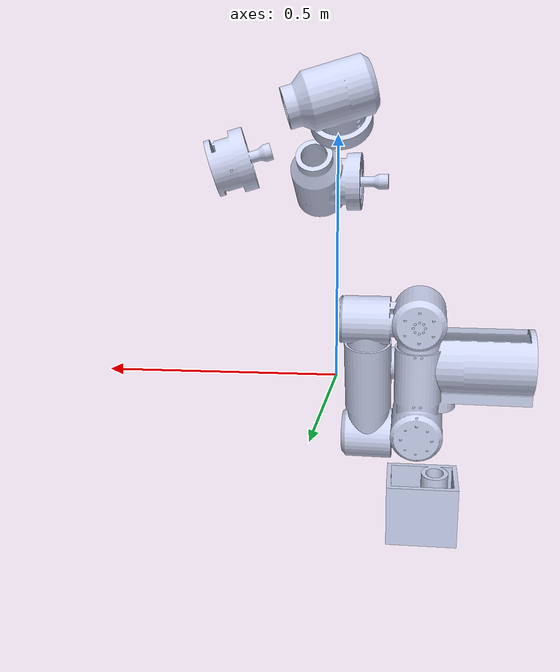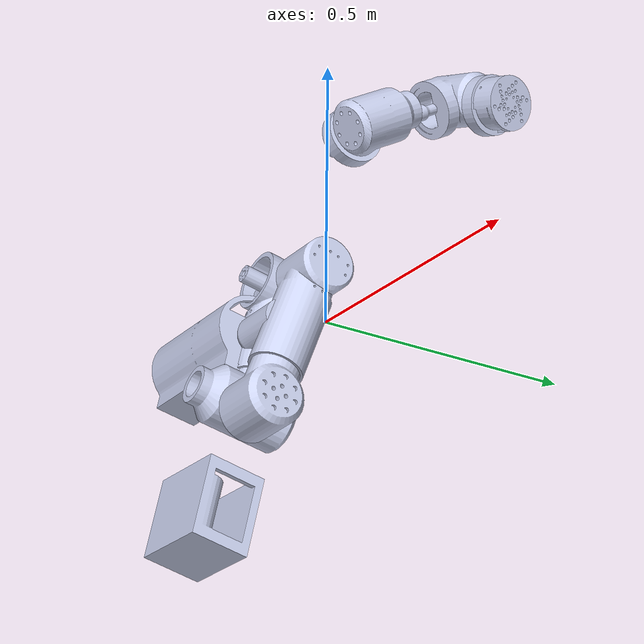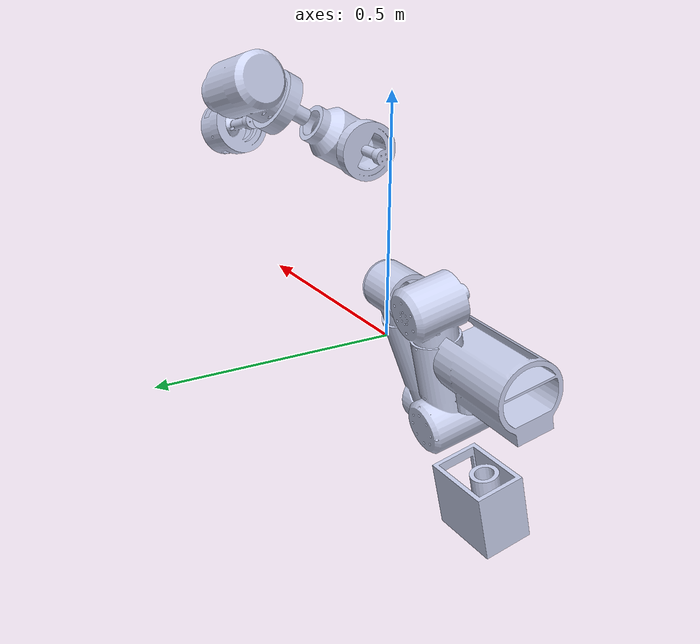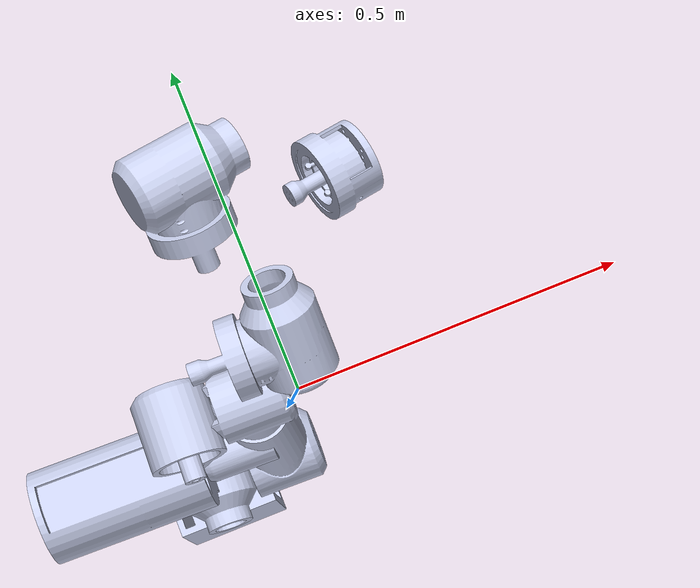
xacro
<?xml version="1.0"?>
<robot xmlns:xacro="http://www.ros.org/wiki/xacro" name="handy">
    <xacro:arg name="initial_positions_file" default="initial_positions.yaml" />
    <xacro:arg name="ros2_control_hardware_type" default="mock_components" />

    <!-- Import handy urdf file -->
    <xacro:include filename="$(find handy_description)/urdf/handy_arm.urdf" />

    <!-- Import control_xacro -->
    <xacro:include filename="handy.ros2_control.xacro" />

    <!-- Import Gazebo materials (optional, for better visuals) -->
    <xacro:include filename="gazebo_materials.xacro" />

    <xacro:handy_ros2_control
        name="FakeSystem"
        initial_positions_file="$(arg initial_positions_file)"
        hardware_type="$(arg ros2_control_hardware_type)"
    />

    <!-- Gazebo ros2_control plugin -->
    <gazebo>
        <plugin filename="gz_ros2_control-system" name="gz_ros2_control::GazeboSimROS2ControlPlugin">
            <parameters>$(find arm_config)/config/ros2_controllers.yaml</parameters>
        </plugin>
    </gazebo>

</robot>

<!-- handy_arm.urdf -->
<robot name="handy">
  <link name="world"/>
  <joint name="world_to_base_link" type="fixed">
    <parent link="world"/>
    <child link="base_link"/>
  </joint>
  <link name="base_link">
    <inertial>
      <origin xyz="-0.201494797464755 -0.33270613657075 0.122153346997545" rpy="0 0 0" />
      <mass value="1.02993183799962" />
      <inertia ixx="0.00388180151314568" ixy="0.000146477227467121" ixz="-3.08858068252909E-05" iyy="0.00391121441782537" iyz="0.000182968195139445" izz="0.00469941089703615" />
    </inertial>
    <visual>
      <origin xyz="0 0 0" rpy="0 0 0" />
      <geometry>
        <mesh filename="file://$(find handy_description)/meshes/base_link.STL" />
      </geometry>
      <material name="">
        <color rgba="0.792156862745098 0.819607843137255 0.933333333333333 1" />
      </material>
    </visual>
    <collision>
      <origin xyz="0 0 0" rpy="0 0 0" />
      <geometry>
        <mesh filename="file://$(find handy_description)/meshes/base_link.STL" />
      </geometry>
    </collision>
  </link>
  <link name="link1">
    <inertial>
      <origin xyz="-0.0666786874373314 -0.0921973017688339 0.000264678789029818" rpy="0 0 0" />
      <mass value="1.64132539317416" />
      <inertia ixx="0.00556535118301659" ixy="7.50079938158334E-05" ixz="2.24280949133407E-06" iyy="0.0114726745142463" iyz="-3.69085556569161E-05" izz="0.0119142260742093" />
    </inertial>
    <visual>
      <origin xyz="0 0 0" rpy="0 0 0" />
      <geometry>
        <mesh filename="file://$(find handy_description)/meshes/link1.STL" />
      </geometry>
      <material name="">
        <color rgba="0.792156862745098 0.819607843137255 0.933333333333333 1" />
      </material>
    </visual>
    <collision>
      <origin xyz="0 0 0" rpy="0 0 0" />
      <geometry>
        <mesh filename="file://$(find handy_description)/meshes/link1.STL" />
      </geometry>
    </collision>
  </link>
  <joint name="joint1" type="continuous">
    <origin xyz="-0.216688742328293 -0.0653750258144941 -0.076488940569971" rpy="1.35139351605387 -0.005661808569178 -0.0253845459184578" />
    <parent link="base_link" />
    <child link="link1" />
    <axis xyz="0 1 0" />
  </joint>
  <link name="link2">
    <inertial>
      <origin xyz="0.0645803236808763 0.134667104220208 0.000383946319312364" rpy="0 0 0" />
      <mass value="1.21151502652652" />
      <inertia ixx="0.0193047378103137" ixy="4.29936090457579E-05" ixz="9.67797968209189E-07" iyy="0.00234396250666855" iyz="-3.24531752611424E-05" izz="0.01932250860384" />
    </inertial>
    <visual>
      <origin xyz="0 0 0" rpy="0 0 0" />
      <geometry>
        <mesh filename="file://$(find handy_description)/meshes/link2.STL" />
      </geometry>
      <material name="">
        <color rgba="0.792156862745098 0.819607843137255 0.933333333333333 1" />
      </material>
    </visual>
    <collision>
      <origin xyz="0 0 0" rpy="0 0 0" />
      <geometry>
        <mesh filename="file://$(find handy_description)/meshes/link2.STL" />
      </geometry>
    </collision>
  </link>
  <joint name="joint2" type="continuous">
    <origin xyz="0.0435803772319436 -0.0732024481510685 0" rpy="-0.145305947427022 0 0" />
    <parent link="link1" />
    <child link="link2" />
    <axis xyz="1 0 0" />
  </joint>
  <link name="link3">
    <inertial>
      <origin xyz="-3.87366894838426E-07 -0.13490249576615 -0.0632344196231825" rpy="0 0 0" />
      <mass value="1.49807122606035" />
      <inertia ixx="0.0251458807049096" ixy="-7.28940033545766E-09" ixz="1.25447986991812E-08" iyy="0.00365599160370087" iyz="0.000442302513898746" izz="0.0245472015680104" />
    </inertial>
    <visual>
      <origin xyz="0 0 0" rpy="0 0 0" />
      <geometry>
        <mesh filename="file://$(find handy_description)/meshes/link3.STL" />
      </geometry>
      <material name="">
        <color rgba="0.792156862745098 0.819607843137255 0.933333333333333 1" />
      </material>
    </visual>
    <collision>
      <origin xyz="0 0 0" rpy="0 0 0" />
      <geometry>
        <mesh filename="file://$(find handy_description)/meshes/link3.STL" />
      </geometry>
    </collision>
  </link>
  <joint name="joint3" type="continuous">
    <origin xyz="0 0.29155 0.000575582702540212" rpy="-1.5707963267949 -1.42559453038284 -1.5707963267949" />
    <parent link="link2" />
    <child link="link3" />
    <axis xyz="0 0 1" />
  </joint>
  <link name="link4">
    <inertial>
      <origin xyz="-8.16098910672025E-10 0.0948982331730346 -0.00464804995374629" rpy="0 0 0" />
      <mass value="0.77283222645942" />
      <inertia ixx="0.00331238472122077" ixy="-1.89118668225279E-09" ixz="-2.54703633791736E-09" iyy="0.0017818145052466" iyz="5.48858845251521E-05" izz="0.0028907330169525" />
    </inertial>
    <visual>
      <origin xyz="0 0 0" rpy="0 0 0" />
      <geometry>
        <mesh filename="file://$(find handy_description)/meshes/link4.STL" />
      </geometry>
      <material name="">
        <color rgba="0.792156862745098 0.819607843137255 0.933333333333333 1" />
      </material>
    </visual>
    <collision>
      <origin xyz="0 0 0" rpy="0 0 0" />
      <geometry>
        <mesh filename="file://$(find handy_description)/meshes/link4.STL" />
      </geometry>
    </collision>
  </link>
  <joint name="joint4" type="continuous">
    <origin xyz="0 -0.283 0.00601150526788313" rpy="1.5707963267949 0 2.3178872736497" />
    <parent link="link3" />
    <child link="link4" />
    <axis xyz="0 1 0" />
  </joint>
  <link name="link5">
    <inertial>
      <origin xyz="5.92350640205019E-08 0.0315882824222283 -0.0047896223724456" rpy="0 0 0" />
      <mass value="0.653920203225296" />
      <inertia ixx="0.00226060399731019" ixy="-2.74742085885123E-09" ixz="-1.15453855275351E-09" iyy="0.00160541270553799" iyz="2.85164716006729E-05" izz="0.00183368099339665" />
    </inertial>
    <visual>
      <origin xyz="0 0 0" rpy="0 0 0" />
      <geometry>
        <mesh filename="file://$(find handy_description)/meshes/link5.STL" />
      </geometry>
      <material name="">
        <color rgba="0.792156862745098 0.819607843137255 0.933333333333333 1" />
      </material>
    </visual>
    <collision>
      <origin xyz="0 0 0" rpy="0 0 0" />
      <geometry>
        <mesh filename="file://$(find handy_description)/meshes/link5.STL" />
      </geometry>
    </collision>
  </link>
  <joint name="joint5" type="continuous">
    <origin xyz="0 0.137202612217877 -0.110223584216283" rpy="-1.5707963267949 0 2.79819861575838" />
    <parent link="link4" />
    <child link="link5" />
    <axis xyz="0 1 0" />
  </joint>
  <link name="link6">
    <inertial>
      <origin xyz="0 0.0277024142683489 -0.00209008789566878" rpy="0 0 0" />
      <mass value="0.387345492348745" />
      <inertia ixx="0.000597522443691493" ixy="-1.15196480826585E-19" ixz="1.35525271560688E-20" iyy="0.000590870997288825" iyz="-8.90367506781489E-06" izz="0.000599211408259204" />
    </inertial>
    <visual>
      <origin xyz="0 0 0" rpy="0 0 0" />
      <geometry>
        <mesh filename="file://$(find handy_description)/meshes/link6.STL" />
      </geometry>
      <material name="">
        <color rgba="0.792156862745098 0.819607843137255 0.933333333333333 1" />
      </material>
    </visual>
    <collision>
      <origin xyz="0 0 0" rpy="0 0 0" />
      <geometry>
        <mesh filename="file://$(find handy_description)/meshes/link6.STL" />
      </geometry>
    </collision>
  </link>
  <joint name="joint6" type="continuous">
    <origin xyz="0 0.0575709105014207 -0.0937953465795269" rpy="-1.5707963267949 0 -0.705269140023617" />
    <parent link="link5" />
    <child link="link6" />
    <axis xyz="0 1 0" />
  </joint>
  <link name="finger1">
    <inertial>
      <origin xyz="-2.73760507984999E-07 2.57947961879168E-08 0.0125498065128169" rpy="0 0 0" />
      <mass value="0.000814957536847206" />
      <inertia ixx="9.83606443640383E-08" ixy="-2.85087878131236E-13" ixz="5.27813727055151E-13" iyy="9.88499044910405E-08" iyz="-1.34778748220532E-13" izz="3.29439911699083E-09" />
    </inertial>
    <visual>
      <origin xyz="0 0 0" rpy="0 0 0" />
      <geometry>
        <mesh filename="file://$(find handy_description)/meshes/finger1.STL" />
      </geometry>
      <material name="">
        <color rgba="0.792156862745098 0.819607843137255 0.933333333333333 1" />
      </material>
    </visual>
    <collision>
      <origin xyz="0 0 0" rpy="0 0 0" />
      <geometry>
        <mesh filename="file://$(find handy_description)/meshes/finger1.STL" />
      </geometry>
    </collision>
  </link>
  <joint name="joint7" type="fixed">
    <origin xyz="0.022 0.080205 0" rpy="1.5708 0 3.0326" />
    <parent link="link6" />
    <child link="finger1" />
    <axis xyz="0 1 0" />
  </joint>
  <link name="finger2">
    <inertial>
      <origin xyz="-2.62688068908279E-07 3.11801040542292E-09 0.012549849235272" rpy="0 0 0" />
      <mass value="0.000814964423973572" />
      <inertia ixx="9.83610854509935E-08" ixy="-2.55586256300238E-13" ixz="4.23355754987495E-13" iyy="9.88503469937636E-08" iyz="-3.31712098605089E-14" izz="3.29440080136995E-09" />
    </inertial>
    <visual>
      <origin xyz="0 0 0" rpy="0 0 0" />
      <geometry>
        <mesh filename="file://$(find handy_description)/meshes/finger2.STL" />
      </geometry>
      <material name="">
        <color rgba="0.792156862745098 0.819607843137255 0.933333333333333 1" />
      </material>
    </visual>
    <collision>
      <origin xyz="0 0 0" rpy="0 0 0" />
      <geometry>
        <mesh filename="file://$(find handy_description)/meshes/finger2.STL" />
      </geometry>
    </collision>
  </link>
  <joint name="joint8" type="fixed">
    <origin xyz="-0.022 0.080205 0" rpy="1.5708 0 3.011" />
    <parent link="link6" />
    <child link="finger2" />
    <axis xyz="0 1 0" />
  </joint>
</robot>
